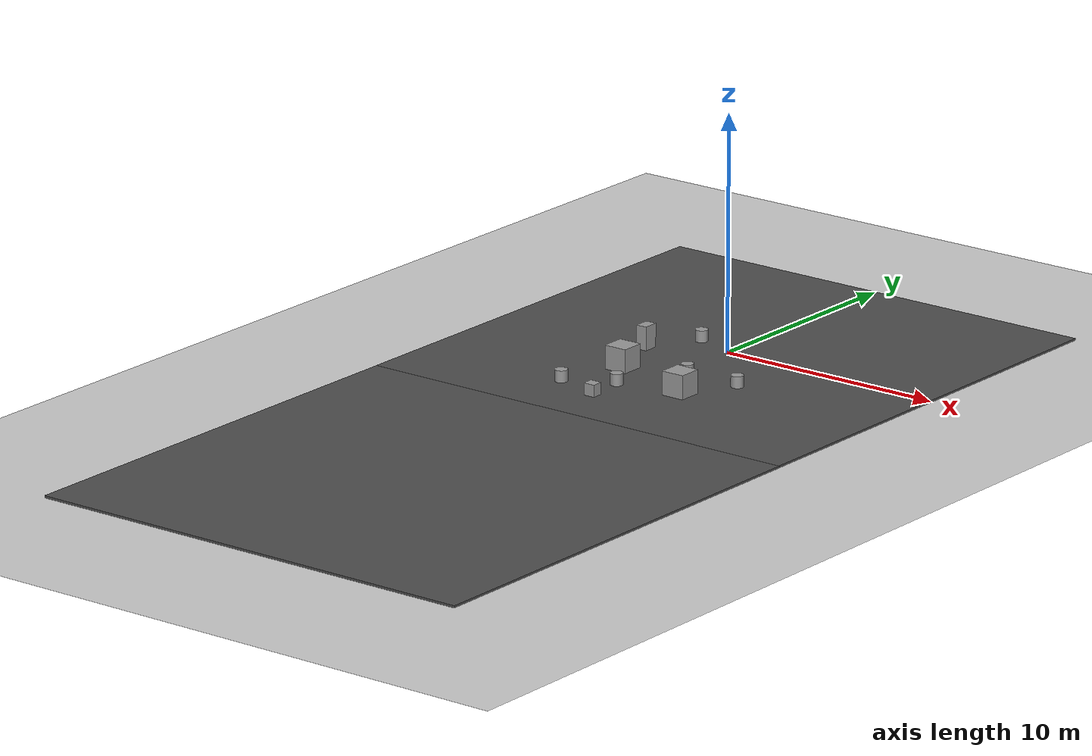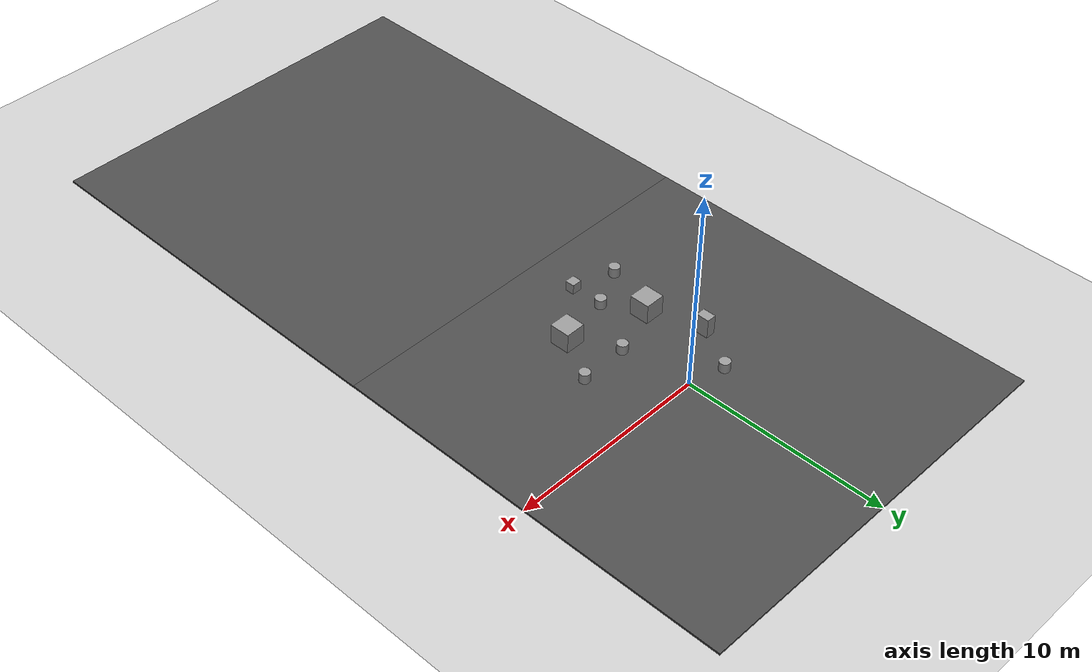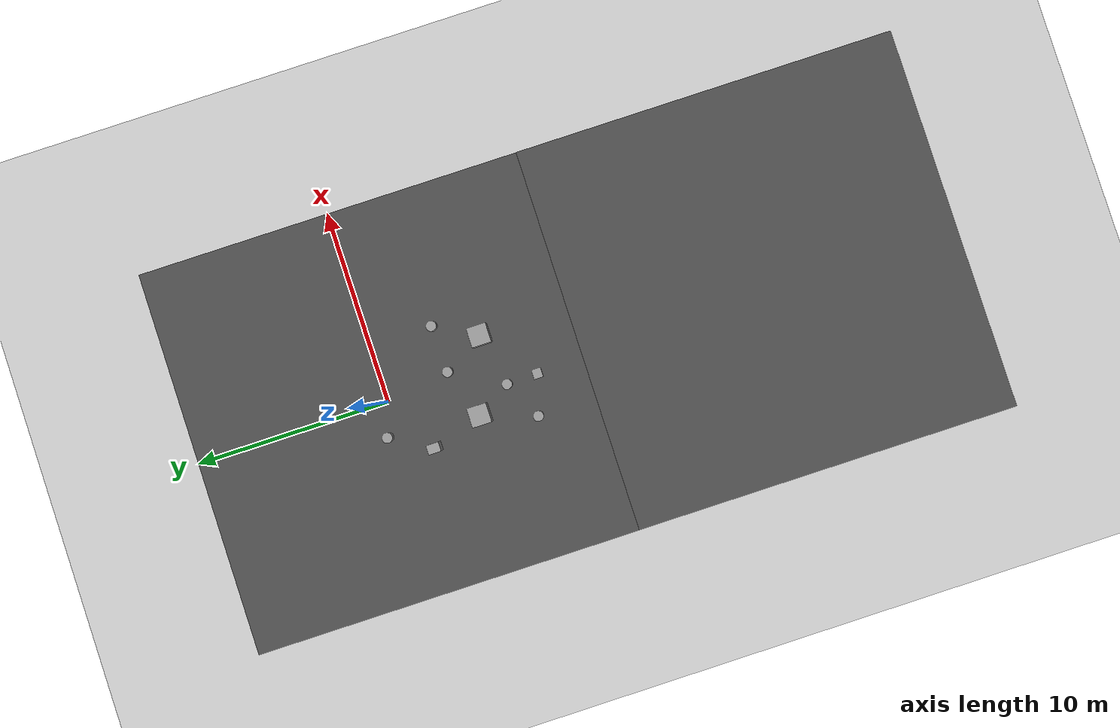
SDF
<sdf version="1.7">
 <world name="default">
  <model name="ground_plane">
   <static>1</static>
   <link name="link">
    <collision name="collision">
     <geometry><plane><normal>0 0 1</normal><size>100 100</size></plane></geometry>
     <surface>
      <contact><collide_bitmask>65535</collide_bitmask></contact>
      <friction><ode><mu>100</mu><mu2>50</mu2></ode></friction>
     </surface>
    </collision>
    <visual name="visual">
     <cast_shadows>0</cast_shadows>
     <geometry><plane><normal>0 0 1</normal><size>100 100</size></plane></geometry>
     <material>
      <script><uri>file://media/materials/scripts/gazebo.material</uri><name>Gazebo/Grey</name></script>
     </material>
    </visual>
   </link>
  </model>
  <model name="asphalt_plane">
   <static>1</static>
   <link name="link">
    <collision name="collision"><geometry><box><size>20 20 0.1</size></box></geometry></collision>
    <visual name="visual">
     <cast_shadows>0</cast_shadows>
     <geometry><box><size>20 20 0.1</size></box></geometry>
     <material>
      <script>
       <uri>model://asphalt_plane/materials/scripts</uri>
       <uri>model://asphalt_plane/materials/textures</uri>
       <name>vrc/asphalt</name>
      </script>
     </material>
    </visual>
   </link>
   <pose>-0.009672 -0.01806 0 0 -0 0</pose>
  </model>
  <model name="asphalt_plane_clone_1">
   <static>1</static>
   <link name="link">
    <collision name="collision"><geometry><box><size>20 20 0.1</size></box></geometry></collision>
    <visual name="visual">
     <cast_shadows>0</cast_shadows>
     <geometry><box><size>20 20 0.1</size></box></geometry>
     <material>
      <script>
       <uri>model://asphalt_plane/materials/scripts</uri>
       <uri>model://asphalt_plane/materials/textures</uri>
       <name>vrc/asphalt</name>
      </script>
     </material>
    </visual>
   </link>
   <pose>0 -20 0 0 -0 0</pose>
  </model>
  <model name="unit_cylinder_clone_1">
   <pose>-1.69361 0.491646 0.294837 -5e-06 7e-06 0.000798</pose>
   <link name="link">
    <inertial>
     <mass>1</mass>
     <inertia><ixx>0.145833</ixx><ixy>0</ixy><ixz>0</ixz><iyy>0.145833</iyy><iyz>0</iyz><izz>0.125</izz></inertia>
    </inertial>
    <collision name="collision">
     <geometry><cylinder><radius>0.264047</radius><length>0.48967</length></cylinder></geometry>
    </collision>
    <visual name="visual">
     <geometry><cylinder><radius>0.264047</radius><length>0.48967</length></cylinder></geometry>
     <material>
      <script><name>Gazebo/Grey</name><uri>file://media/materials/scripts/gazebo.material</uri></script>
     </material>
    </visual>
   </link>
  </model>
  <model name="unit_cylinder_clone_6">
   <pose>2.93725 -3.29398 0.294825 0 -0 0.000671</pose>
   <link name="link">
    <inertial>
     <mass>1</mass>
     <inertia><ixx>0.145833</ixx><ixy>0</ixy><ixz>0</ixz><iyy>0.145833</iyy><iyz>0</iyz><izz>0.125</izz></inertia>
    </inertial>
    <collision name="collision">
     <geometry><cylinder><radius>0.264047</radius><length>0.48967</length></cylinder></geometry>
    </collision>
    <visual name="visual">
     <geometry><cylinder><radius>0.264047</radius><length>0.48967</length></cylinder></geometry>
     <material>
      <script><name>Gazebo/Grey</name><uri>file://media/materials/scripts/gazebo.material</uri></script>
     </material>
    </visual>
   </link>
  </model>
  <model name="unit_cylinder_clone_7">
   <pose>0.502178 -3.35697 0.294837 -2e-06 -7e-06 0.000763</pose>
   <link name="link">
    <inertial>
     <mass>1</mass>
     <inertia><ixx>0.145833</ixx><ixy>0</ixy><ixz>0</ixz><iyy>0.145833</iyy><iyz>0</iyz><izz>0.125</izz></inertia>
    </inertial>
    <collision name="collision">
     <geometry><cylinder><radius>0.264047</radius><length>0.48967</length></cylinder></geometry>
    </collision>
    <visual name="visual">
     <geometry><cylinder><radius>0.264047</radius><length>0.48967</length></cylinder></geometry>
     <material>
      <script><name>Gazebo/Grey</name><uri>file://media/materials/scripts/gazebo.material</uri></script>
     </material>
    </visual>
   </link>
  </model>
  <model name="unit_cylinder_clone_9">
   <pose>-1.00004 -5.99995 0.294825 0 -0 0.000374</pose>
   <link name="link">
    <inertial>
     <mass>1</mass>
     <inertia><ixx>0.145833</ixx><ixy>0</ixy><ixz>0</ixz><iyy>0.145833</iyy><iyz>0</iyz><izz>0.125</izz></inertia>
    </inertial>
    <collision name="collision">
     <geometry><cylinder><radius>0.264047</radius><length>0.48967</length></cylinder></geometry>
    </collision>
    <visual name="visual">
     <geometry><cylinder><radius>0.264047</radius><length>0.48967</length></cylinder></geometry>
     <material>
      <script><name>Gazebo/Grey</name><uri>file://media/materials/scripts/gazebo.material</uri></script>
     </material>
    </visual>
   </link>
  </model>
  <model name="unit_cylinder_clone_17">
   <pose>-3.00005 -6.99996 0.294826 -1e-06 -0 -4e-05</pose>
   <link name="link">
    <inertial>
     <mass>1</mass>
     <inertia><ixx>0.145833</ixx><ixy>0</ixy><ixz>0</ixz><iyy>0.145833</iyy><iyz>0</iyz><izz>0.125</izz></inertia>
    </inertial>
    <collision name="collision">
     <geometry><cylinder><radius>0.264047</radius><length>0.48967</length></cylinder></geometry>
    </collision>
    <visual name="visual">
     <geometry><cylinder><radius>0.264047</radius><length>0.48967</length></cylinder></geometry>
     <material>
      <script><name>Gazebo/Grey</name><uri>file://media/materials/scripts/gazebo.material</uri></script>
     </material>
    </visual>
   </link>
  </model>
  <model name="unit_box_0_clone_1_clone_3">
   <pose>-0.962788 -7.60684 0.301356 0 -0 1e-06</pose>
   <link name="link">
    <inertial>
     <mass>1</mass>
     <inertia>
      <ixx>0.166667</ixx>
      <ixy>0</ixy>
      <ixz>0</ixz>
      <iyy>0.166667</iyy>
      <iyz>0</iyz>
      <izz>0.166667</izz>
     </inertia>
    </inertial>
    <collision name="collision">
     <geometry><box><size>0.495294 0.467832 0.502712</size></box></geometry>
    </collision>
    <visual name="visual">
     <geometry><box><size>0.495294 0.467832 0.502712</size></box></geometry>
     <material>
      <script><name>Gazebo/Grey</name><uri>file://media/materials/scripts/gazebo.material</uri></script>
     </material>
    </visual>
   </link>
  </model>
  <model name="unit_box_1">
   <pose>1.73473 -5.44843 0.549995 -9e-06 -1e-06 0</pose>
   <link name="link">
    <inertial>
     <mass>1</mass>
     <inertia>
      <ixx>0.166667</ixx>
      <ixy>0</ixy>
      <ixz>0</ixz>
      <iyy>0.166667</iyy>
      <iyz>0</iyz>
      <izz>0.166667</izz>
     </inertia>
    </inertial>
    <collision name="collision"><geometry><box><size>1 1 1</size></box></geometry></collision>
    <visual name="visual">
     <geometry><box><size>1 1 1</size></box></geometry>
     <material>
      <script><name>Gazebo/Grey</name><uri>file://media/materials/scripts/gazebo.material</uri></script>
     </material>
    </visual>
   </link>
  </model>
  <model name="unit_box_2">
   <pose>-2.0426 -4.24981 0.549995 -9e-06 -1e-06 0</pose>
   <link name="link">
    <inertial>
     <mass>1</mass>
     <inertia>
      <ixx>0.166667</ixx>
      <ixy>0</ixy>
      <ixz>0</ixz>
      <iyy>0.166667</iyy>
      <iyz>0</iyz>
      <izz>0.166667</izz>
     </inertia>
    </inertial>
    <collision name="collision"><geometry><box><size>1 1 1</size></box></geometry></collision>
    <visual name="visual">
     <geometry><box><size>1 1 1</size></box></geometry>
     <material>
      <script><name>Gazebo/Grey</name><uri>file://media/materials/scripts/gazebo.material</uri></script>
     </material>
    </visual>
   </link>
  </model>
  <model name="unit_box_3_clone_0">
   <pose>-2.8958 -1.60924 0.55 0 -0 0</pose>
   <link name="link">
    <inertial>
     <mass>1</mass>
     <inertia>
      <ixx>0.166667</ixx>
      <ixy>0</ixy>
      <ixz>0</ixz>
      <iyy>0.166667</iyy>
      <iyz>0</iyz>
      <izz>0.166667</izz>
     </inertia>
    </inertial>
    <collision name="collision"><geometry><box><size>0.473217 0.637104 1</size></box></geometry></collision>
    <visual name="visual">
     <geometry><box><size>0.473217 0.637104 1</size></box></geometry>
     <material>
      <script><name>Gazebo/Grey</name><uri>file://media/materials/scripts/gazebo.material</uri></script>
     </material>
    </visual>
   </link>
  </model>
 </world>
</sdf>
